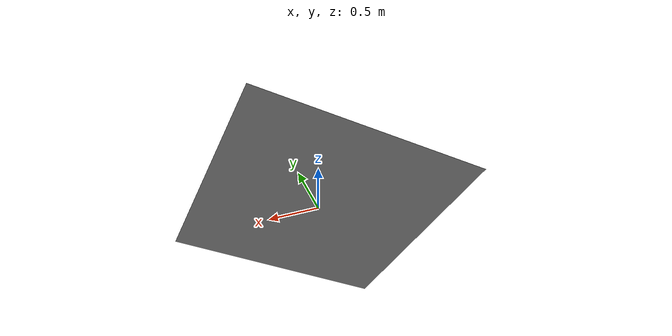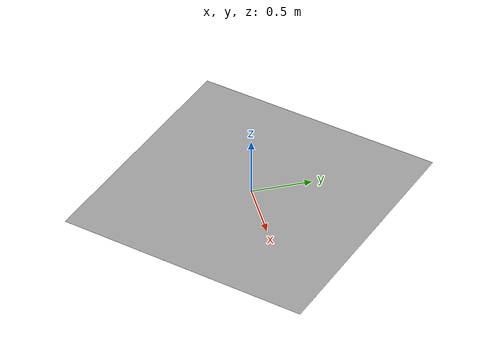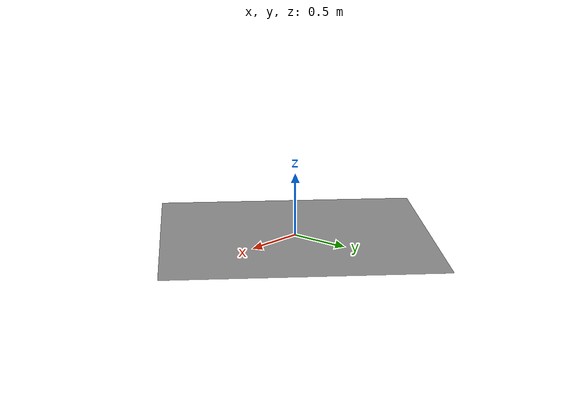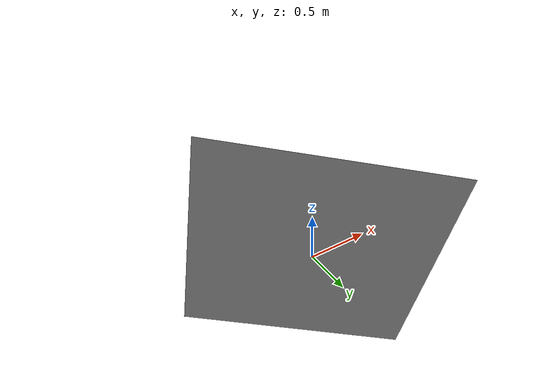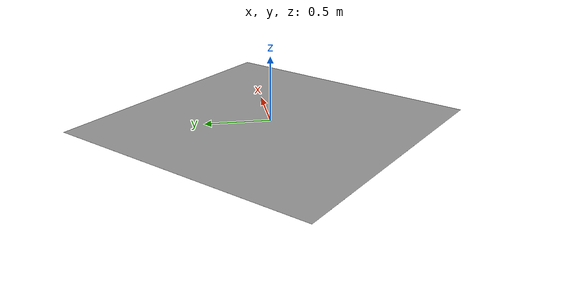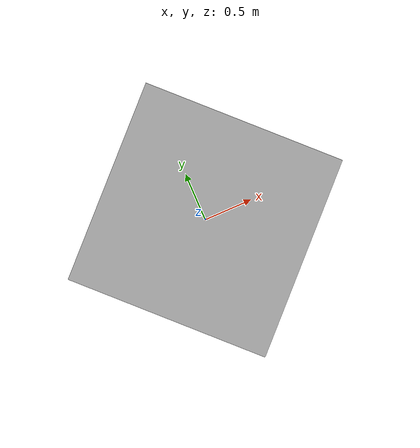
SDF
<?xml version='1.0'?>
<sdf version='1.7'>
  <model name='intersection'>
    <link name='link_0'>
      <inertial>
        <mass>88.5623</mass>
        <inertia>
          <ixx>33.8657</ixx>
          <ixy>0</ixy>
          <ixz>0</ixz>
          <iyy>33.8657</iyy>
          <iyz>0</iyz>
          <izz>67.7313</izz>
        </inertia>
        <pose>0 0 0 0 -0 0</pose>
      </inertial>
      <pose>0 0 0 0 -0 0.785</pose>
      <gravity>1</gravity>
      <self_collide>0</self_collide>
      <kinematic>0</kinematic>
      <enable_wind>0</enable_wind>
      <visual name='visual'>
        <pose>0 0 0 0 -0 0</pose>
        <geometry>
          <box>
            <size>2.14213 2.14213 0.0001</size>
          </box>
        </geometry>
        <material>
          <lighting>1</lighting>
          <script>
            <uri>file://media/materials/scripts/gazebo.material</uri>
            <name>Gazebo/Gray</name>
          </script>
          <shader type='pixel'>
            <normal_map>__default__</normal_map>
          </shader>
          <ambient>0.26 0.27 0.28 1</ambient>
          <diffuse>0.26 0.27 0.28 1</diffuse>
          <specular>0.01 0.01 0.01 1</specular>
          <emissive>0 0 0 1</emissive>
        </material>
        <transparency>0</transparency>
        <cast_shadows>1</cast_shadows>
      </visual>
      <collision name='collision'>
        <laser_retro>0</laser_retro>
        <max_contacts>10</max_contacts>
        <pose>0 0 0 0 -0 0</pose>
        <geometry>
          <box>
            <size>1e-05 0.001 0.001</size>
          </box>
        </geometry>
        <surface>
          <friction>
            <ode>
              <mu>1</mu>
              <mu2>1</mu2>
              <fdir1>0 0 0</fdir1>
              <slip1>0</slip1>
              <slip2>0</slip2>
            </ode>
            <torsional>
              <coefficient>1</coefficient>
              <patch_radius>0</patch_radius>
              <surface_radius>0</surface_radius>
              <use_patch_radius>1</use_patch_radius>
              <ode>
                <slip>0</slip>
              </ode>
            </torsional>
          </friction>
          <bounce>
            <restitution_coefficient>0</restitution_coefficient>
            <threshold>1e+06</threshold>
          </bounce>
          <contact>
            <collide_without_contact>0</collide_without_contact>
            <collide_without_contact_bitmask>1</collide_without_contact_bitmask>
            <collide_bitmask>1</collide_bitmask>
            <ode>
              <soft_cfm>0</soft_cfm>
              <soft_erp>0.2</soft_erp>
              <kp>1e+13</kp>
              <kd>1</kd>
              <max_vel>0.01</max_vel>
              <min_depth>0</min_depth>
            </ode>
            <bullet>
              <split_impulse>1</split_impulse>
              <split_impulse_penetration_threshold>-0.01</split_impulse_penetration_threshold>
              <soft_cfm>0</soft_cfm>
              <soft_erp>0.2</soft_erp>
              <kp>1e+13</kp>
              <kd>1</kd>
            </bullet>
          </contact>
        </surface>
      </collision>
    </link>
    <static>0</static>
    <allow_auto_disable>1</allow_auto_disable>
  </model>
</sdf>
